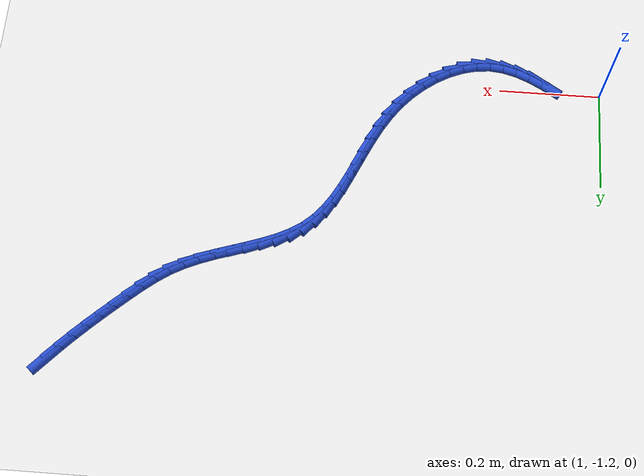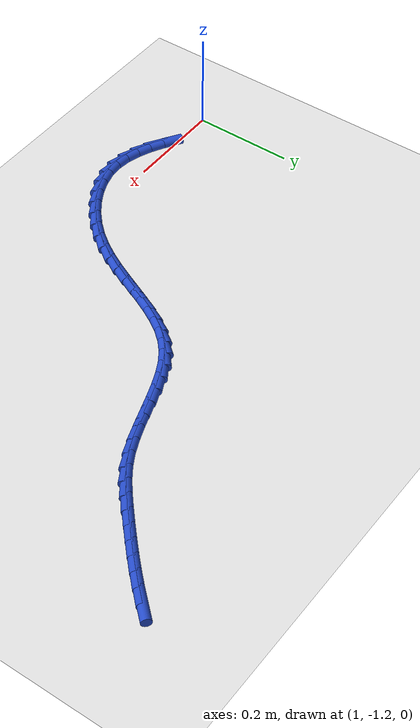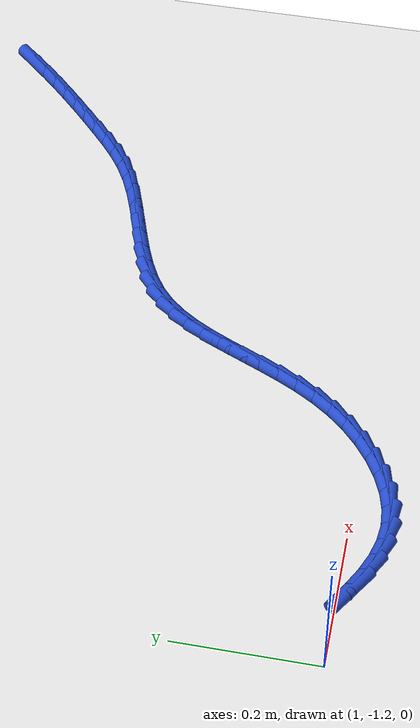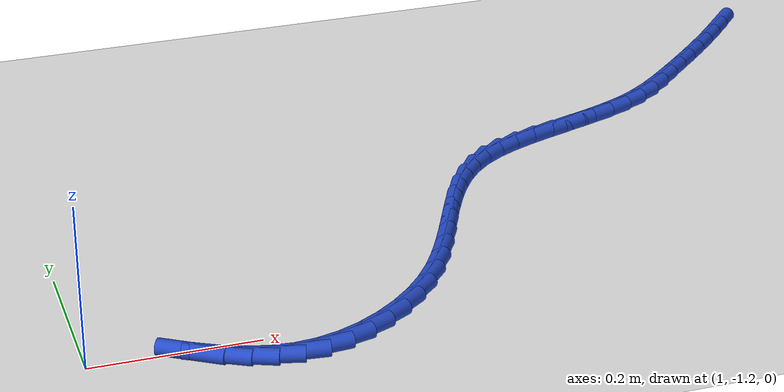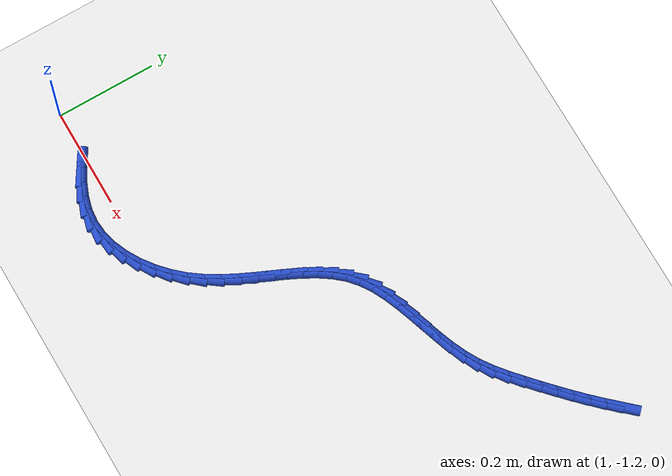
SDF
<sdf version="1.6">
 <world name="default">
  <model name="ground_plane">
   <static>1</static>
   <link name="link">
    <collision name="collision">
     <geometry><plane><normal>0 0 1</normal><size>100 100</size></plane></geometry>
     <surface><friction><ode><mu>100</mu><mu2>50</mu2></ode></friction></surface>
    </collision>
    <visual name="visual">
     <cast_shadows>0</cast_shadows>
     <geometry><plane><normal>0 0 1</normal><size>100 100</size></plane></geometry>
     <material>
      <script><uri>file://media/materials/scripts/gazebo.material</uri><name>Gazebo/WhiteGlow</name></script>
     </material>
    </visual>
   </link>
  </model>
  <model name="line">
   <link name="link_138">
    <pose>2.023036944708343 -0.579088198806936 0.01 0 1.57 0.829946809568486</pose>
    <collision name="collision">
     <geometry><cylinder><radius>0.01</radius><length>0.08</length></cylinder></geometry>
    </collision>
    <visual name="visual">
     <material>
      <script><name>Gazebo/Blue</name><uri>file://media/materials/scripts/gazebo.material</uri></script>
     </material>
     <geometry><cylinder><radius>0.01</radius><length>0.08</length></cylinder></geometry>
    </visual>
   </link>
   <link name="link_139">
    <pose>2.0020490188494895 -0.6020346368800752 0.01 0 1.57 0.802346134902982</pose>
    <collision name="collision">
     <geometry><cylinder><radius>0.01</radius><length>0.08</length></cylinder></geometry>
    </collision>
    <visual name="visual">
     <material>
      <script><name>Gazebo/Blue</name><uri>file://media/materials/scripts/gazebo.material</uri></script>
     </material>
     <geometry><cylinder><radius>0.01</radius><length>0.08</length></cylinder></geometry>
    </visual>
   </link>
   <link name="link_140">
    <pose>1.980334207408118 -0.6244982547785904 0.01 0 1.57 0.7791769370189204</pose>
    <collision name="collision">
     <geometry><cylinder><radius>0.01</radius><length>0.08</length></cylinder></geometry>
    </collision>
    <visual name="visual">
     <material>
      <script><name>Gazebo/Blue</name><uri>file://media/materials/scripts/gazebo.material</uri></script>
     </material>
     <geometry><cylinder><radius>0.01</radius><length>0.08</length></cylinder></geometry>
    </visual>
   </link>
   <link name="link_141">
    <pose>1.9580854444656812 -0.6464718965807013 0.01 0 1.57 0.7601399939882041</pose>
    <collision name="collision">
     <geometry><cylinder><radius>0.01</radius><length>0.08</length></cylinder></geometry>
    </collision>
    <visual name="visual">
     <material>
      <script><name>Gazebo/Blue</name><uri>file://media/materials/scripts/gazebo.material</uri></script>
     </material>
     <geometry><cylinder><radius>0.01</radius><length>0.08</length></cylinder></geometry>
    </visual>
   </link>
   <link name="link_142">
    <pose>1.935495664103629 -0.6679484063646287 0.01 0 1.57 0.7450257313323084</pose>
    <collision name="collision">
     <geometry><cylinder><radius>0.01</radius><length>0.08</length></cylinder></geometry>
    </collision>
    <visual name="visual">
     <material>
      <script><name>Gazebo/Blue</name><uri>file://media/materials/scripts/gazebo.material</uri></script>
     </material>
     <geometry><cylinder><radius>0.01</radius><length>0.08</length></cylinder></geometry>
    </visual>
   </link>
   <link name="link_143">
    <pose>1.912757800403413 -0.6889206282085938 0.01 0 1.57 0.7337000125258994</pose>
    <collision name="collision">
     <geometry><cylinder><radius>0.01</radius><length>0.08</length></cylinder></geometry>
    </collision>
    <visual name="visual">
     <material>
      <script><name>Gazebo/Blue</name><uri>file://media/materials/scripts/gazebo.material</uri></script>
     </material>
     <geometry><cylinder><radius>0.01</radius><length>0.08</length></cylinder></geometry>
    </visual>
   </link>
   <link name="link_144">
    <pose>1.8900643571927682 -0.7093811039044888 0.01 0 1.57 0.7178520623804655</pose>
    <collision name="collision">
     <geometry><cylinder><radius>0.01</radius><length>0.08</length></cylinder></geometry>
    </collision>
    <visual name="visual">
     <material>
      <script><name>Gazebo/Blue</name><uri>file://media/materials/scripts/gazebo.material</uri></script>
     </material>
     <geometry><cylinder><radius>0.01</radius><length>0.08</length></cylinder></geometry>
    </visual>
   </link>
   <link name="link_145">
    <pose>1.8673980728929724 -0.7291749989121178 0.01 0 1.57 0.6754136602082375</pose>
    <collision name="collision">
     <geometry><cylinder><radius>0.01</radius><length>0.08</length></cylinder></geometry>
    </collision>
    <visual name="visual">
     <material>
      <script><name>Gazebo/Blue</name><uri>file://media/materials/scripts/gazebo.material</uri></script>
     </material>
     <geometry><cylinder><radius>0.01</radius><length>0.08</length></cylinder></geometry>
    </visual>
   </link>
   <link name="link_146">
    <pose>1.844194787320555 -0.7477632403568826 0.01 0 1.57 0.6026178144219398</pose>
    <collision name="collision">
     <geometry><cylinder><radius>0.01</radius><length>0.08</length></cylinder></geometry>
    </collision>
    <visual name="visual">
     <material>
      <script><name>Gazebo/Blue</name><uri>file://media/materials/scripts/gazebo.material</uri></script>
     </material>
     <geometry><cylinder><radius>0.01</radius><length>0.08</length></cylinder></geometry>
    </visual>
   </link>
   <link name="link_147">
    <pose>1.819802335093151 -0.7645449249430664 0.01 0 1.57 0.5042486501983966</pose>
    <collision name="collision">
     <geometry><cylinder><radius>0.01</radius><length>0.08</length></cylinder></geometry>
    </collision>
    <visual name="visual">
     <material>
      <script><name>Gazebo/Blue</name><uri>file://media/materials/scripts/gazebo.material</uri></script>
     </material>
     <geometry><cylinder><radius>0.01</radius><length>0.08</length></cylinder></geometry>
    </visual>
   </link>
   <link name="link_148">
    <pose>1.7936339220356181 -0.7789854927091981 0.01 0 1.57 0.41600044991839785</pose>
    <collision name="collision">
     <geometry><cylinder><radius>0.01</radius><length>0.08</length></cylinder></geometry>
    </collision>
    <visual name="visual">
     <material>
      <script><name>Gazebo/Blue</name><uri>file://media/materials/scripts/gazebo.material</uri></script>
     </material>
     <geometry><cylinder><radius>0.01</radius><length>0.08</length></cylinder></geometry>
    </visual>
   </link>
   <link name="link_149">
    <pose>1.7658165262927472 -0.7912747704324009 0.01 0 1.57 0.35683882259256317</pose>
    <collision name="collision">
     <geometry><cylinder><radius>0.01</radius><length>0.08</length></cylinder></geometry>
    </collision>
    <visual name="visual">
     <material>
      <script><name>Gazebo/Blue</name><uri>file://media/materials/scripts/gazebo.material</uri></script>
     </material>
     <geometry><cylinder><radius>0.01</radius><length>0.08</length></cylinder></geometry>
    </visual>
   </link>
   <link name="link_150">
    <pose>1.7369166095015076 -0.8020486038858772 0.01 0 1.57 0.3247339486734336</pose>
    <collision name="collision">
     <geometry><cylinder><radius>0.01</radius><length>0.08</length></cylinder></geometry>
    </collision>
    <visual name="visual">
     <material>
      <script><name>Gazebo/Blue</name><uri>file://media/materials/scripts/gazebo.material</uri></script>
     </material>
     <geometry><cylinder><radius>0.01</radius><length>0.08</length></cylinder></geometry>
    </visual>
   </link>
   <link name="link_151">
    <pose>1.7075070692311987 -0.8119493704831007 0.01 0 1.57 0.31831142576551613</pose>
    <collision name="collision">
     <geometry><cylinder><radius>0.01</radius><length>0.08</length></cylinder></geometry>
    </collision>
    <visual name="visual">
     <material>
      <script><name>Gazebo/Blue</name><uri>file://media/materials/scripts/gazebo.material</uri></script>
     </material>
     <geometry><cylinder><radius>0.01</radius><length>0.08</length></cylinder></geometry>
    </visual>
   </link>
   <link name="link_152">
    <pose>1.6781608030511188 -0.8216194476375451 0.01 0 1.57 0.3377056307557157</pose>
    <collision name="collision">
     <geometry><cylinder><radius>0.01</radius><length>0.08</length></cylinder></geometry>
    </collision>
    <visual name="visual">
     <material>
      <script><name>Gazebo/Blue</name><uri>file://media/materials/scripts/gazebo.material</uri></script>
     </material>
     <geometry><cylinder><radius>0.01</radius><length>0.08</length></cylinder></geometry>
    </visual>
   </link>
   <link name="link_153">
    <pose>1.649450708530567 -0.8317012127626839 0.01 0 1.57 0.38474415107487797</pose>
    <collision name="collision">
     <geometry><cylinder><radius>0.01</radius><length>0.08</length></cylinder></geometry>
    </collision>
    <visual name="visual">
     <material>
      <script><name>Gazebo/Blue</name><uri>file://media/materials/scripts/gazebo.material</uri></script>
     </material>
     <geometry><cylinder><radius>0.01</radius><length>0.08</length></cylinder></geometry>
    </visual>
   </link>
   <link name="link_154">
    <pose>1.6219496832388425 -0.842837043271991 0.01 0 1.57 0.462799444451312</pose>
    <collision name="collision">
     <geometry><cylinder><radius>0.01</radius><length>0.08</length></cylinder></geometry>
    </collision>
    <visual name="visual">
     <material>
      <script><name>Gazebo/Blue</name><uri>file://media/materials/scripts/gazebo.material</uri></script>
     </material>
     <geometry><cylinder><radius>0.01</radius><length>0.08</length></cylinder></geometry>
    </visual>
   </link>
   <link name="link_155">
    <pose>1.5962306247452427 -0.8556693165789403 0.01 0 1.57 0.5759047172869622</pose>
    <collision name="collision">
     <geometry><cylinder><radius>0.01</radius><length>0.08</length></cylinder></geometry>
    </collision>
    <visual name="visual">
     <material>
      <script><name>Gazebo/Blue</name><uri>file://media/materials/scripts/gazebo.material</uri></script>
     </material>
     <geometry><cylinder><radius>0.01</radius><length>0.08</length></cylinder></geometry>
    </visual>
   </link>
   <link name="link_156">
    <pose>1.572866430619068 -0.8708404100970046 0.01 0 1.57 0.7229435397519036</pose>
    <collision name="collision">
     <geometry><cylinder><radius>0.01</radius><length>0.08</length></cylinder></geometry>
    </collision>
    <visual name="visual">
     <material>
      <script><name>Gazebo/Blue</name><uri>file://media/materials/scripts/gazebo.material</uri></script>
     </material>
     <geometry><cylinder><radius>0.01</radius><length>0.08</length></cylinder></geometry>
    </visual>
   </link>
   <link name="link_157">
    <pose>1.5523646193586724 -0.8889289377148544 0.01 0 1.57 0.8660089410964784</pose>
    <collision name="collision">
     <geometry><cylinder><radius>0.01</radius><length>0.08</length></cylinder></geometry>
    </collision>
    <visual name="visual">
     <material>
      <script><name>Gazebo/Blue</name><uri>file://media/materials/scripts/gazebo.material</uri></script>
     </material>
     <geometry><cylinder><radius>0.01</radius><length>0.08</length></cylinder></geometry>
    </visual>
   </link>
   <link name="link_158">
    <pose>1.5345626384142488 -0.9098600000288717 0.01 0 1.57 0.9794086839603097</pose>
    <collision name="collision">
     <geometry><cylinder><radius>0.01</radius><length>0.08</length></cylinder></geometry>
    </collision>
    <visual name="visual">
     <material>
      <script><name>Gazebo/Blue</name><uri>file://media/materials/scripts/gazebo.material</uri></script>
     </material>
     <geometry><cylinder><radius>0.01</radius><length>0.08</length></cylinder></geometry>
    </visual>
   </link>
   <link name="link_159">
    <pose>1.5189048375304783 -0.9331753135503825 0.01 0 1.57 1.0620630035051666</pose>
    <collision name="collision">
     <geometry><cylinder><radius>0.01</radius><length>0.08</length></cylinder></geometry>
    </collision>
    <visual name="visual">
     <material>
      <script><name>Gazebo/Blue</name><uri>file://media/materials/scripts/gazebo.material</uri></script>
     </material>
     <geometry><cylinder><radius>0.01</radius><length>0.08</length></cylinder></geometry>
    </visual>
   </link>
   <link name="link_160">
    <pose>1.5048305706533391 -0.9584117224404379 0.01 0 1.57 1.1160526049450274</pose>
    <collision name="collision">
     <geometry><cylinder><radius>0.01</radius><length>0.08</length></cylinder></geometry>
    </collision>
    <visual name="visual">
     <material>
      <script><name>Gazebo/Blue</name><uri>file://media/materials/scripts/gazebo.material</uri></script>
     </material>
     <geometry><cylinder><radius>0.01</radius><length>0.08</length></cylinder></geometry>
    </visual>
   </link>
   <link name="link_161">
    <pose>1.491779191728811 -0.985106070860088 0.01 0 1.57 1.144074019367525</pose>
    <collision name="collision">
     <geometry><cylinder><radius>0.01</radius><length>0.08</length></cylinder></geometry>
    </collision>
    <visual name="visual">
     <material>
      <script><name>Gazebo/Blue</name><uri>file://media/materials/scripts/gazebo.material</uri></script>
     </material>
     <geometry><cylinder><radius>0.01</radius><length>0.08</length></cylinder></geometry>
    </visual>
   </link>
   <link name="link_162">
    <pose>1.4791900547028736 -1.0127952029703853 0.01 0 1.57 1.1482901975281428</pose>
    <collision name="collision">
     <geometry><cylinder><radius>0.01</radius><length>0.08</length></cylinder></geometry>
    </collision>
    <visual name="visual">
     <material>
      <script><name>Gazebo/Blue</name><uri>file://media/materials/scripts/gazebo.material</uri></script>
     </material>
     <geometry><cylinder><radius>0.01</radius><length>0.08</length></cylinder></geometry>
    </visual>
   </link>
   <link name="link_163">
    <pose>1.4665025135215068 -1.0410159629323783 0.01 0 1.57 1.12996989538645</pose>
    <collision name="collision">
     <geometry><cylinder><radius>0.01</radius><length>0.08</length></cylinder></geometry>
    </collision>
    <visual name="visual">
     <material>
      <script><name>Gazebo/Blue</name><uri>file://media/materials/scripts/gazebo.material</uri></script>
     </material>
     <geometry><cylinder><radius>0.01</radius><length>0.08</length></cylinder></geometry>
    </visual>
   </link>
   <link name="link_164">
    <pose>1.4531559221306902 -1.0693051949071188 0.01 0 1.57 1.0895537686828534</pose>
    <collision name="collision">
     <geometry><cylinder><radius>0.01</radius><length>0.08</length></cylinder></geometry>
    </collision>
    <visual name="visual">
     <material>
      <script><name>Gazebo/Blue</name><uri>file://media/materials/scripts/gazebo.material</uri></script>
     </material>
     <geometry><cylinder><radius>0.01</radius><length>0.08</length></cylinder></geometry>
    </visual>
   </link>
   <link name="link_165">
    <pose>1.4385896344764035 -1.0971997430556581 0.01 0 1.57 1.0269949438526844</pose>
    <collision name="collision">
     <geometry><cylinder><radius>0.01</radius><length>0.08</length></cylinder></geometry>
    </collision>
    <visual name="visual">
     <material>
      <script><name>Gazebo/Blue</name><uri>file://media/materials/scripts/gazebo.material</uri></script>
     </material>
     <geometry><cylinder><radius>0.01</radius><length>0.08</length></cylinder></geometry>
    </visual>
   </link>
   <link name="link_166">
    <pose>1.4222430045046266 -1.124236451539047 0.01 0 1.57 0.9423768312410151</pose>
    <collision name="collision">
     <geometry><cylinder><radius>0.01</radius><length>0.08</length></cylinder></geometry>
    </collision>
    <visual name="visual">
     <material>
      <script><name>Gazebo/Blue</name><uri>file://media/materials/scripts/gazebo.material</uri></script>
     </material>
     <geometry><cylinder><radius>0.01</radius><length>0.08</length></cylinder></geometry>
    </visual>
   </link>
   <link name="link_167">
    <pose>1.4035554818564808 -1.1499521594541136 0.01 0 1.57 0.8417065339436571</pose>
    <collision name="collision">
     <geometry><cylinder><radius>0.01</radius><length>0.08</length></cylinder></geometry>
    </collision>
    <visual name="visual">
     <material>
      <script><name>Gazebo/Blue</name><uri>file://media/materials/scripts/gazebo.material</uri></script>
     </material>
     <geometry><cylinder><radius>0.01</radius><length>0.08</length></cylinder></geometry>
    </visual>
   </link>
   <link name="link_168">
    <pose>1.3821884068001662 -1.1738719633643753 0.01 0 1.57 0.7395745855142727</pose>
    <collision name="collision">
     <geometry><cylinder><radius>0.01</radius><length>0.08</length></cylinder></geometry>
    </collision>
    <visual name="visual">
     <material>
      <script><name>Gazebo/Blue</name><uri>file://media/materials/scripts/gazebo.material</uri></script>
     </material>
     <geometry><cylinder><radius>0.01</radius><length>0.08</length></cylinder></geometry>
    </visual>
   </link>
   <link name="link_169">
    <pose>1.3584988910036349 -1.1954841393558624 0.01 0 1.57 0.6345764610597613</pose>
    <collision name="collision">
     <geometry><cylinder><radius>0.01</radius><length>0.08</length></cylinder></geometry>
    </collision>
    <visual name="visual">
     <material>
      <script><name>Gazebo/Blue</name><uri>file://media/materials/scripts/gazebo.material</uri></script>
     </material>
     <geometry><cylinder><radius>0.01</radius><length>0.08</length></cylinder></geometry>
    </visual>
   </link>
   <link name="link_170">
    <pose>1.3329800595818424 -1.2142697656331376 0.01 0 1.57 0.5217927820749562</pose>
    <collision name="collision">
     <geometry><cylinder><radius>0.01</radius><length>0.08</length></cylinder></geometry>
    </collision>
    <visual name="visual">
     <material>
      <script><name>Gazebo/Blue</name><uri>file://media/materials/scripts/gazebo.material</uri></script>
     </material>
     <geometry><cylinder><radius>0.01</radius><length>0.08</length></cylinder></geometry>
    </visual>
   </link>
   <link name="link_171">
    <pose>1.3061250376497489 -1.2297099204007635 0.01 0 1.57 0.3958640075168537</pose>
    <collision name="collision">
     <geometry><cylinder><radius>0.01</radius><length>0.08</length></cylinder></geometry>
    </collision>
    <visual name="visual">
     <material>
      <script><name>Gazebo/Blue</name><uri>file://media/materials/scripts/gazebo.material</uri></script>
     </material>
     <geometry><cylinder><radius>0.01</radius><length>0.08</length></cylinder></geometry>
    </visual>
   </link>
   <link name="link_172">
    <pose>1.2784269503223122 -1.2412856818633031 0.01 0 1.57 0.2510242444517644</pose>
    <collision name="collision">
     <geometry><cylinder><radius>0.01</radius><length>0.08</length></cylinder></geometry>
    </collision>
    <visual name="visual">
     <material>
      <script><name>Gazebo/Blue</name><uri>file://media/materials/scripts/gazebo.material</uri></script>
     </material>
     <geometry><cylinder><radius>0.01</radius><length>0.08</length></cylinder></geometry>
    </visual>
   </link>
   <link name="link_173">
    <pose>1.250378922714489 -1.2484781282253192 0.01 0 1.57 0.08195354732518674</pose>
    <collision name="collision">
     <geometry><cylinder><radius>0.01</radius><length>0.08</length></cylinder></geometry>
    </collision>
    <visual name="visual">
     <material>
      <script><name>Gazebo/Blue</name><uri>file://media/materials/scripts/gazebo.material</uri></script>
     </material>
     <geometry><cylinder><radius>0.01</radius><length>0.08</length></cylinder></geometry>
    </visual>
   </link>
   <link name="link_174">
    <pose>1.2224731728260074 -1.2507702372800884 0.01 0 1.57 -0.10083201443839816</pose>
    <collision name="collision">
     <geometry><cylinder><radius>0.01</radius><length>0.08</length></cylinder></geometry>
    </collision>
    <visual name="visual">
     <material>
      <script><name>Gazebo/Blue</name><uri>file://media/materials/scripts/gazebo.material</uri></script>
     </material>
     <geometry><cylinder><radius>0.01</radius><length>0.08</length></cylinder></geometry>
    </visual>
   </link>
   <link name="link_175">
    <pose>1.1950351614566361 -1.2479941928358231 0.01 0 1.57 -0.2625482190301684</pose>
    <collision name="collision">
     <geometry><cylinder><radius>0.01</radius><length>0.08</length></cylinder></geometry>
    </collision>
    <visual name="visual">
     <material>
      <script><name>Gazebo/Blue</name><uri>file://media/materials/scripts/gazebo.material</uri></script>
     </material>
     <geometry><cylinder><radius>0.01</radius><length>0.08</length></cylinder></geometry>
    </visual>
   </link>
   <link name="link_176">
    <pose>1.1680301196882434 -1.2407365352399573 0.01 0 1.57 -0.39314818814607655</pose>
    <collision name="collision">
     <geometry><cylinder><radius>0.01</radius><length>0.08</length></cylinder></geometry>
    </collision>
    <visual name="visual">
     <material>
      <script><name>Gazebo/Blue</name><uri>file://media/materials/scripts/gazebo.material</uri></script>
     </material>
     <geometry><cylinder><radius>0.01</radius><length>0.08</length></cylinder></geometry>
    </visual>
   </link>
   <link name="link_177">
    <pose>1.1413763190677015 -1.2296821427352773 0.01 0 1.57 -0.4927454746219264</pose>
    <collision name="collision">
     <geometry><cylinder><radius>0.01</radius><length>0.08</length></cylinder></geometry>
    </collision>
    <visual name="visual">
     <material>
      <script><name>Gazebo/Blue</name><uri>file://media/materials/scripts/gazebo.material</uri></script>
     </material>
     <geometry><cylinder><radius>0.01</radius><length>0.08</length></cylinder></geometry>
    </visual>
   </link>
   <link name="link_178">
    <pose>1.114992031141885 -1.2155158935645693 0.01 0 1.57 -0.564626839859944</pose>
    <collision name="collision">
     <geometry><cylinder><radius>0.01</radius><length>0.08</length></cylinder></geometry>
    </collision>
    <visual name="visual">
     <material>
      <script><name>Gazebo/Blue</name><uri>file://media/materials/scripts/gazebo.material</uri></script>
     </material>
     <geometry><cylinder><radius>0.01</radius><length>0.08</length></cylinder></geometry>
    </visual>
   </link>
  </model>
 </world>
</sdf>
